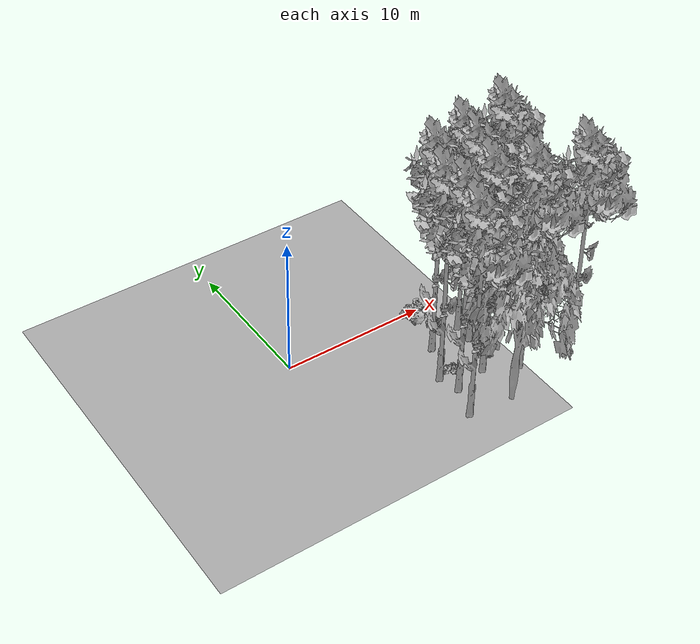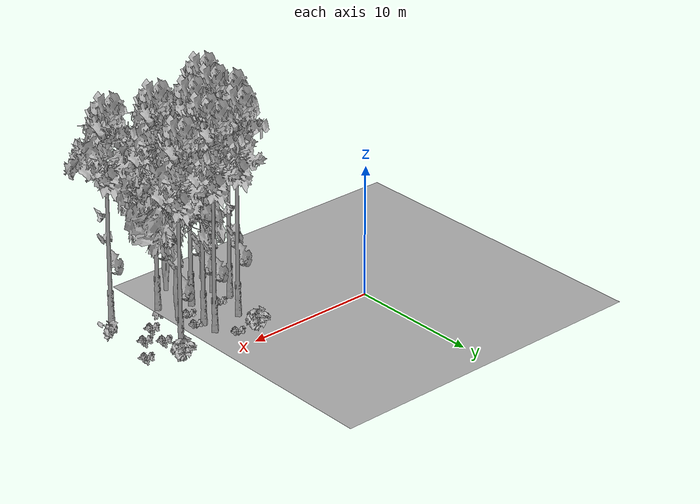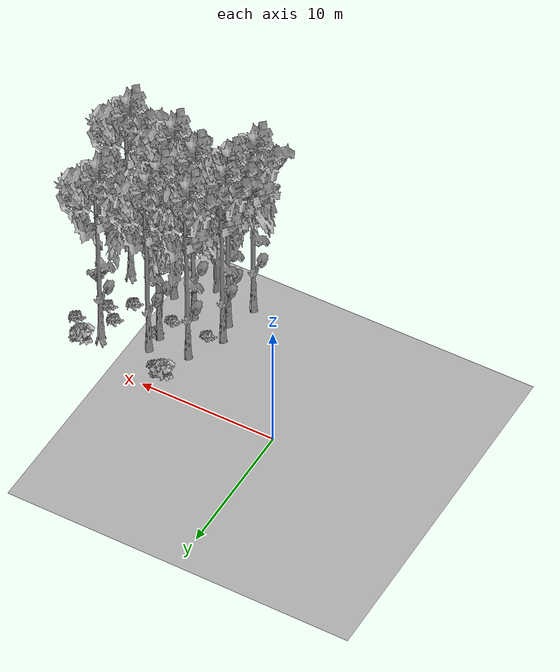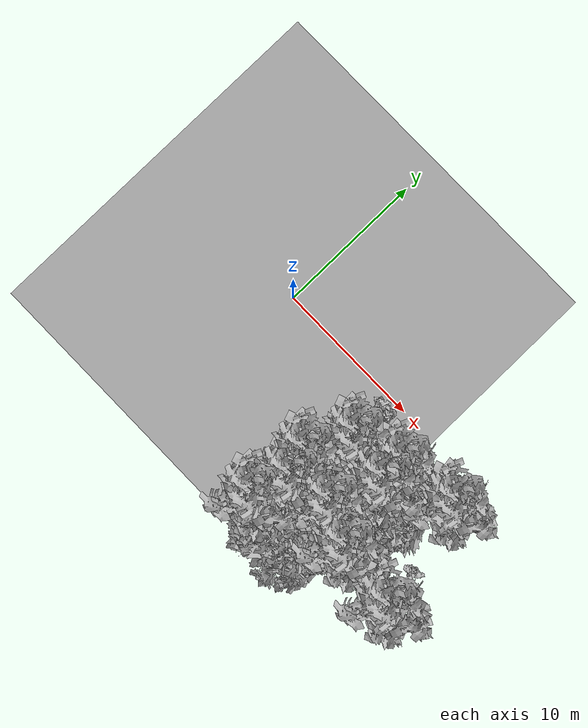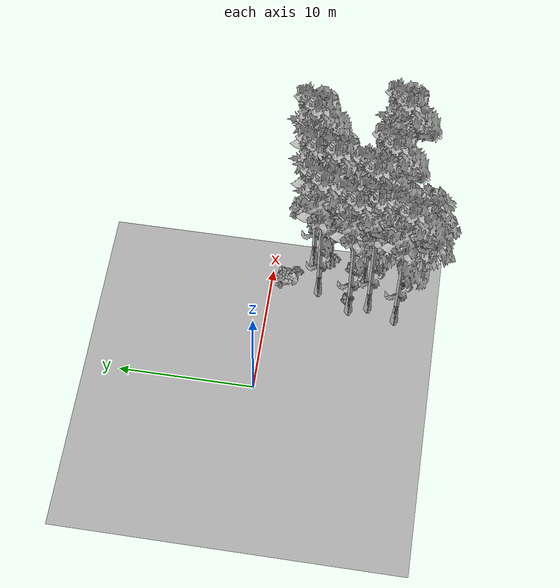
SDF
<sdf version="1.7">
 <world name="default">
  <model name="ground_plane">
   <static>1</static>
   <link name="link">
    <collision name="collision">
     <pose>-50 0 0 0 -0 0</pose>
     <geometry><plane><normal>0 0 1</normal><size>80 80</size></plane></geometry>
     <surface><contact><ode><min_depth>0.01</min_depth><max_vel>0</max_vel></ode></contact></surface>
    </collision>
    <visual name="grass">
     <cast_shadows>0</cast_shadows>
     <geometry>
      <mesh>
       <scale>0.46714285714285714 0.46714285714285714 0.1</scale>
       <uri>file://grass_plane/meshes/grass_plane.dae</uri>
      </mesh>
     </geometry>
    </visual>
   </link>
  </model>
  <model name="Tree 103">
   <static>1</static>
   <pose>11.178875892140418 -2.8974657512236774 0 1.57079 -0 0</pose>
   <link name="link">
    <collision name="collision">
     <geometry><mesh><scale>3.5 5 3.5</scale><uri>model://tree_9/meshes/tree_9.obj</uri></mesh></geometry>
    </collision>
    <visual name="visual">
     <geometry><mesh><scale>3.5 5 3.5</scale><uri>model://tree_9/meshes/tree_9.obj</uri></mesh></geometry>
    </visual>
   </link>
  </model>
  <model name="Tree 105">
   <static>1</static>
   <pose>14.54966202227272 -2.3395981379635202 0 1.57079 -0 0</pose>
   <link name="link">
    <collision name="collision">
     <geometry><mesh><scale>3.5 5 3.5</scale><uri>model://tree_9/meshes/tree_9.obj</uri></mesh></geometry>
    </collision>
    <visual name="visual">
     <geometry><mesh><scale>3.5 5 3.5</scale><uri>model://tree_9/meshes/tree_9.obj</uri></mesh></geometry>
    </visual>
   </link>
  </model>
  <model name="Tree 124">
   <static>1</static>
   <pose>12.212774894699507 -7.934009004115438 0 1.57079 -0 0</pose>
   <link name="link">
    <collision name="collision">
     <geometry><mesh><scale>3.5 5 3.5</scale><uri>model://tree_9/meshes/tree_9.obj</uri></mesh></geometry>
    </collision>
    <visual name="visual">
     <geometry><mesh><scale>3.5 5 3.5</scale><uri>model://tree_9/meshes/tree_9.obj</uri></mesh></geometry>
    </visual>
   </link>
  </model>
  <model name="Tree 143">
   <static>1</static>
   <pose>11.130781413497651 -4.176216115021774 0 1.57079 -0 0</pose>
   <link name="link">
    <collision name="collision">
     <geometry><mesh><scale>3.5 5 3.5</scale><uri>model://tree_9/meshes/tree_9.obj</uri></mesh></geometry>
    </collision>
    <visual name="visual">
     <geometry><mesh><scale>3.5 5 3.5</scale><uri>model://tree_9/meshes/tree_9.obj</uri></mesh></geometry>
    </visual>
   </link>
  </model>
  <model name="Tree 188">
   <static>1</static>
   <pose>9.935692692709821 -9.845085064457038 0 1.57079 -0 0</pose>
   <link name="link">
    <collision name="collision">
     <geometry><mesh><scale>3.5 5 3.5</scale><uri>model://tree_2/meshes/tree_2.obj</uri></mesh></geometry>
    </collision>
    <visual name="visual">
     <geometry><mesh><scale>3.5 5 3.5</scale><uri>model://tree_2/meshes/tree_2.obj</uri></mesh></geometry>
    </visual>
   </link>
  </model>
  <model name="Tree 207">
   <static>1</static>
   <pose>11.999144317881857 -5.877775304580801 0 1.57079 -0 0</pose>
   <link name="link">
    <collision name="collision">
     <geometry><mesh><scale>3.5 5 3.5</scale><uri>model://tree_2/meshes/tree_2.obj</uri></mesh></geometry>
    </collision>
    <visual name="visual">
     <geometry><mesh><scale>3.5 5 3.5</scale><uri>model://tree_2/meshes/tree_2.obj</uri></mesh></geometry>
    </visual>
   </link>
  </model>
  <model name="Tree 210">
   <static>1</static>
   <pose>8.555253804292477 -3.5893536520442666 0 1.57079 -0 0</pose>
   <link name="link">
    <collision name="collision">
     <geometry><mesh><scale>3.5 5 3.5</scale><uri>model://tree_9/meshes/tree_9.obj</uri></mesh></geometry>
    </collision>
    <visual name="visual">
     <geometry><mesh><scale>3.5 5 3.5</scale><uri>model://tree_9/meshes/tree_9.obj</uri></mesh></geometry>
    </visual>
   </link>
  </model>
  <model name="Tree 266">
   <static>1</static>
   <pose>7.312955415028036 -6.0390442060736405 0 1.57079 -0 0</pose>
   <link name="link">
    <collision name="collision">
     <geometry><mesh><scale>3.5 5 3.5</scale><uri>model://tree_9/meshes/tree_9.obj</uri></mesh></geometry>
    </collision>
    <visual name="visual">
     <geometry><mesh><scale>3.5 5 3.5</scale><uri>model://tree_9/meshes/tree_9.obj</uri></mesh></geometry>
    </visual>
   </link>
  </model>
  <model name="Tree 441">
   <static>1</static>
   <pose>6.96500071727835 -9.52451685918345 0 1.57079 -0 0</pose>
   <link name="link">
    <collision name="collision">
     <geometry><mesh><scale>3.5 5 3.5</scale><uri>model://tree_9/meshes/tree_9.obj</uri></mesh></geometry>
    </collision>
    <visual name="visual">
     <geometry><mesh><scale>3.5 5 3.5</scale><uri>model://tree_9/meshes/tree_9.obj</uri></mesh></geometry>
    </visual>
   </link>
  </model>
  <model name="Tree 457">
   <static>1</static>
   <pose>7.705367049335393 -7.45534192608509 0 1.57079 -0 0</pose>
   <link name="link">
    <collision name="collision">
     <geometry><mesh><scale>3.5 5 3.5</scale><uri>model://tree_9/meshes/tree_9.obj</uri></mesh></geometry>
    </collision>
    <visual name="visual">
     <geometry><mesh><scale>3.5 5 3.5</scale><uri>model://tree_9/meshes/tree_9.obj</uri></mesh></geometry>
    </visual>
   </link>
  </model>
  <model name="Tree 483">
   <static>1</static>
   <pose>15.857179365087546 -8.416697358991865 0 1.57079 -0 0</pose>
   <link name="link">
    <collision name="collision">
     <geometry><mesh><scale>3.5 5 3.5</scale><uri>model://tree_9/meshes/tree_9.obj</uri></mesh></geometry>
    </collision>
    <visual name="visual">
     <geometry><mesh><scale>3.5 5 3.5</scale><uri>model://tree_9/meshes/tree_9.obj</uri></mesh></geometry>
    </visual>
   </link>
  </model>
  <model name="Tree 634">
   <static>1</static>
   <pose>10.04718823110823 -6.9053320516068055 0 1.57079 -0 0</pose>
   <link name="link">
    <collision name="collision">
     <geometry><mesh><scale>3.5 5 3.5</scale><uri>model://tree_9/meshes/tree_9.obj</uri></mesh></geometry>
    </collision>
    <visual name="visual">
     <geometry><mesh><scale>3.5 5 3.5</scale><uri>model://tree_9/meshes/tree_9.obj</uri></mesh></geometry>
    </visual>
   </link>
  </model>
  <model name="Bush 34">
   <static>1</static>
   <pose>17.512815577034267 -6.606542006504334 0 1.57079 -0 0</pose>
   <link name="link">
    <collision name="collision">
     <geometry><mesh><scale>2 2 2</scale><uri>model://bush_0/meshes/bush_0.obj</uri></mesh></geometry>
     <surface><contact><collide_without_contact>false</collide_without_contact></contact></surface>
    </collision>
    <visual name="visual">
     <geometry><mesh><scale>2 2 2</scale><uri>model://bush_0/meshes/bush_0.obj</uri></mesh></geometry>
    </visual>
   </link>
  </model>
  <model name="Bush 103">
   <static>1</static>
   <pose>8.998330649877992 -1.1747764243637988 0 1.57079 -0 0</pose>
   <link name="link">
    <collision name="collision">
     <geometry><mesh><scale>2 2 2</scale><uri>model://bush_1/meshes/bush_1.obj</uri></mesh></geometry>
     <surface><contact><collide_without_contact>false</collide_without_contact></contact></surface>
    </collision>
    <visual name="visual">
     <geometry><mesh><scale>2 2 2</scale><uri>model://bush_1/meshes/bush_1.obj</uri></mesh></geometry>
    </visual>
   </link>
  </model>
  <model name="Bush 119">
   <static>1</static>
   <pose>15.315025612031164 -1.3566356192905644 0 1.57079 -0 0</pose>
   <link name="link">
    <collision name="collision">
     <geometry><mesh><scale>2 2 2</scale><uri>model://bush_1/meshes/bush_1.obj</uri></mesh></geometry>
     <surface><contact><collide_without_contact>false</collide_without_contact></contact></surface>
    </collision>
    <visual name="visual">
     <geometry><mesh><scale>2 2 2</scale><uri>model://bush_1/meshes/bush_1.obj</uri></mesh></geometry>
    </visual>
   </link>
  </model>
  <model name="Bush 156">
   <static>1</static>
   <pose>8.36195129017316 -5.860867224079101 0 1.57079 -0 0</pose>
   <link name="link">
    <collision name="collision">
     <geometry><mesh><scale>2 2 2</scale><uri>model://bush_2/meshes/bush_2.obj</uri></mesh></geometry>
     <surface><contact><collide_without_contact>false</collide_without_contact></contact></surface>
    </collision>
    <visual name="visual">
     <geometry><mesh><scale>2 2 2</scale><uri>model://bush_2/meshes/bush_2.obj</uri></mesh></geometry>
    </visual>
   </link>
  </model>
  <model name="Bush 202">
   <static>1</static>
   <pose>15.564800606382377 -4.996376983325931 0 1.57079 -0 0</pose>
   <link name="link">
    <collision name="collision">
     <geometry><mesh><scale>2 2 2</scale><uri>model://bush_2/meshes/bush_2.obj</uri></mesh></geometry>
     <surface><contact><collide_without_contact>false</collide_without_contact></contact></surface>
    </collision>
    <visual name="visual">
     <geometry><mesh><scale>2 2 2</scale><uri>model://bush_2/meshes/bush_2.obj</uri></mesh></geometry>
    </visual>
   </link>
  </model>
  <model name="Bush 203">
   <static>1</static>
   <pose>10.068303992356583 -1.7762678244587704 0 1.57079 -0 0</pose>
   <link name="link">
    <collision name="collision">
     <geometry><mesh><scale>2 2 2</scale><uri>model://bush_2/meshes/bush_2.obj</uri></mesh></geometry>
     <surface><contact><collide_without_contact>false</collide_without_contact></contact></surface>
    </collision>
    <visual name="visual">
     <geometry><mesh><scale>2 2 2</scale><uri>model://bush_2/meshes/bush_2.obj</uri></mesh></geometry>
    </visual>
   </link>
  </model>
  <model name="Bush 226">
   <static>1</static>
   <pose>14.571971548138173 -4.128422913285526 0 1.57079 -0 0</pose>
   <link name="link">
    <collision name="collision">
     <geometry><mesh><scale>2 2 2</scale><uri>model://bush_2/meshes/bush_2.obj</uri></mesh></geometry>
     <surface><contact><collide_without_contact>false</collide_without_contact></contact></surface>
    </collision>
    <visual name="visual">
     <geometry><mesh><scale>2 2 2</scale><uri>model://bush_2/meshes/bush_2.obj</uri></mesh></geometry>
    </visual>
   </link>
  </model>
  <model name="Bush 271">
   <static>1</static>
   <pose>11.608510785385945 -4.438977629558529 0 1.57079 -0 0</pose>
   <link name="link">
    <collision name="collision">
     <geometry><mesh><scale>2 2 2</scale><uri>model://bush_2/meshes/bush_2.obj</uri></mesh></geometry>
     <surface><contact><collide_without_contact>false</collide_without_contact></contact></surface>
    </collision>
    <visual name="visual">
     <geometry><mesh><scale>2 2 2</scale><uri>model://bush_2/meshes/bush_2.obj</uri></mesh></geometry>
    </visual>
   </link>
  </model>
  <model name="Bush 546">
   <static>1</static>
   <pose>14.169987226911488 -6.045562569381985 0 1.57079 -0 0</pose>
   <link name="link">
    <collision name="collision">
     <geometry><mesh><scale>2 2 2</scale><uri>model://bush_2/meshes/bush_2.obj</uri></mesh></geometry>
     <surface><contact><collide_without_contact>false</collide_without_contact></contact></surface>
    </collision>
    <visual name="visual">
     <geometry><mesh><scale>2 2 2</scale><uri>model://bush_2/meshes/bush_2.obj</uri></mesh></geometry>
    </visual>
   </link>
  </model>
  <model name="Bush 573">
   <static>1</static>
   <pose>16.903132813877654 -3.0928760132923827 0 1.57079 -0 0</pose>
   <link name="link">
    <collision name="collision">
     <geometry><mesh><scale>2 2 2</scale><uri>model://bush_2/meshes/bush_2.obj</uri></mesh></geometry>
     <surface><contact><collide_without_contact>false</collide_without_contact></contact></surface>
    </collision>
    <visual name="visual">
     <geometry><mesh><scale>2 2 2</scale><uri>model://bush_2/meshes/bush_2.obj</uri></mesh></geometry>
    </visual>
   </link>
  </model>
  <model name="Bush 577">
   <static>1</static>
   <pose>11.096361222143557 -5.887779951755121 0 1.57079 -0 0</pose>
   <link name="link">
    <collision name="collision">
     <geometry><mesh><scale>2 2 2</scale><uri>model://bush_2/meshes/bush_2.obj</uri></mesh></geometry>
     <surface><contact><collide_without_contact>false</collide_without_contact></contact></surface>
    </collision>
    <visual name="visual">
     <geometry><mesh><scale>2 2 2</scale><uri>model://bush_2/meshes/bush_2.obj</uri></mesh></geometry>
    </visual>
   </link>
  </model>
 </world>
</sdf>
